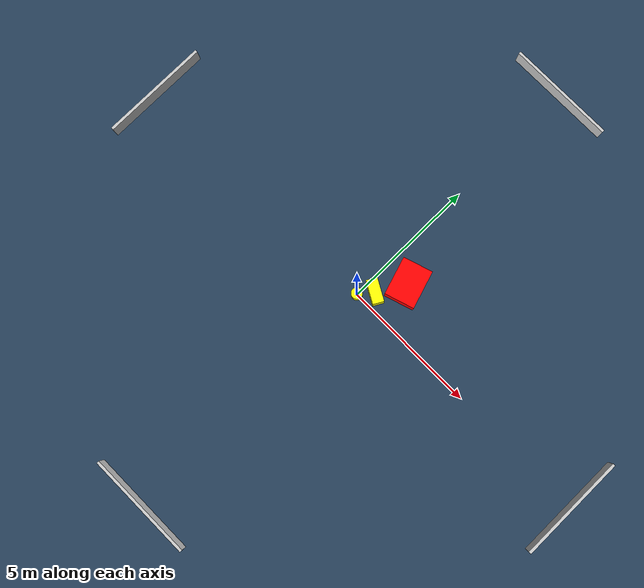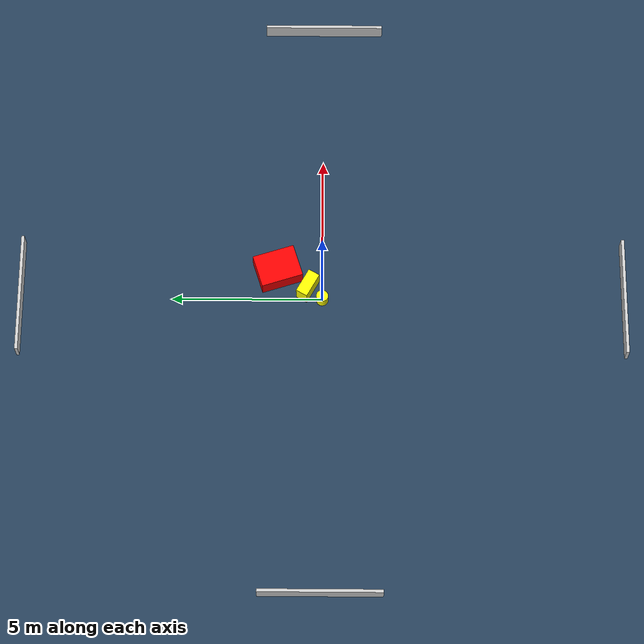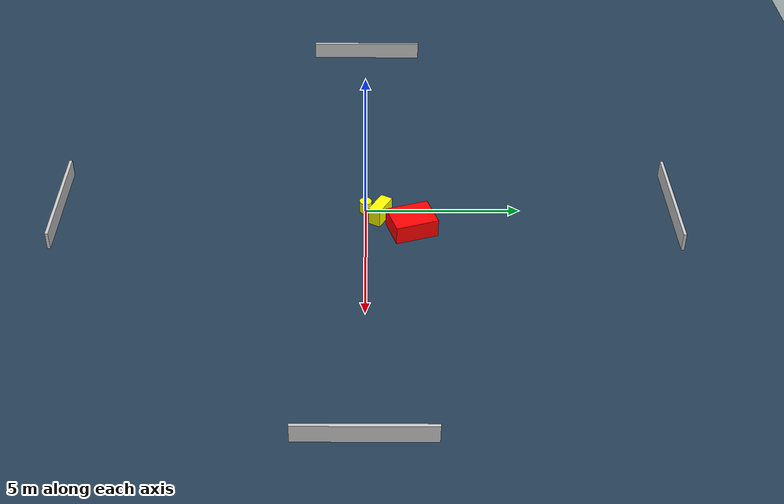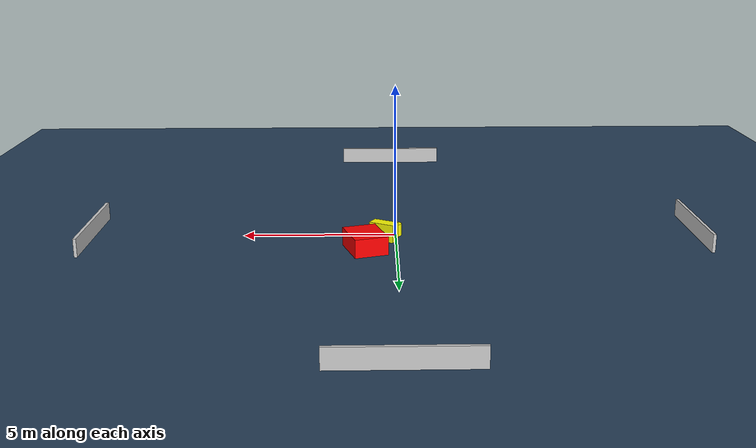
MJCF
<?xml version="1.0" ?>
<mujoco model="generated_environment">
  <option timestep="0.01" integrator="RK4" cone="elliptic"/>
  <default>
    <geom density="1"/>
  </default>
  <asset>
    <texture builtin="gradient" height="3072" name="skybox" rgb1="0.3 0.5 0.7" rgb2="0 0 0" type="skybox" width="512"/>
    <texture builtin="checker" height="300" name="groundplane" rgb1="0.2 0.3 0.4" rgb2="0.1 0.2 0.3" type="2d" width="300"/>
    <material name="groundplane" reflectance="0.2" texrepeat="5 5" texture="groundplane"/>
  </asset>
  <worldbody>
    <light dir="0 0 -1" directional="true" pos="0 0 1.5"/>
    <geom condim="3" friction="0.5 0.005 0.001" material="groundplane" name="floor" pos="0 0 0" size="0 0 0.05" type="plane"/>
    <body name="walls">
      <geom name="wall_1" condim="4" pos="-10.0 0.0 0.3" rgba="0.800000011920929 0.800000011920929 0.800000011920929 1.0" size="0.05 2.0 0.3" type="box"/>
      <geom name="wall_2" condim="4" pos="10.0 0.0 0.3" rgba="0.800000011920929 0.800000011920929 0.800000011920929 1.0" size="0.05 2.0 0.3" type="box"/>
      <geom name="wall_3" condim="4" pos="0.0 -10.0 0.3" rgba="0.800000011920929 0.800000011920929 0.800000011920929 1.0" size="2.0 0.05 0.3" type="box"/>
      <geom name="wall_4" condim="4" pos="0.0 10.0 0.3" rgba="0.800000011920929 0.800000011920929 0.800000011920929 1.0" size="2.0 0.05 0.3" type="box"/>
    </body>
    <body name="robot">
      <joint name="joint_x" type="slide" pos="0 0 0" axis="1 0 0"/>
      <joint name="joint_y" type="slide" pos="0 0 0" axis="0 1 0"/>
      <geom name="robot" type="cylinder" pos="0.0 0.0 0.2" size="0.2 0.2 0.0" mass="5.0" friction="1.0 0.005 0.0001" condim="4" rgba="1.0 1.0 0.0 1.0"/>
    </body>
    <body name="obstacle_1_movable">
      <geom name="obstacle_1_movable" condim="4" pos="0.3902712430950238 0.4808355786752299 0.3" euler="0 0 150.9421883617613" friction="0.0 0.005 0.001" rgba="1.0 1.0 0.0 1.0" size="0.4270864547701926 0.20101688273322327 0.3" type="box" mass="0.1"/>
      <joint type="free"/>
    </body>
    <body name="obstacle_2_static">
      <geom name="obstacle_2_static" condim="4" pos="0.9931394340387164 1.4819039449623423 0.3" euler="0 0 17.749852334428326" friction="0.0 0.005 0.001" rgba="1.0 0.0 0.0 1.0" size="0.5483997391878308 0.7029551041868143 0.3" type="box"/>
    </body>
  </worldbody>
  <actuator>
    <motor name="actuator_x" joint="joint_x" gear="1" ctrlrange="-1 1"/>
    <motor name="actuator_y" joint="joint_y" gear="1" ctrlrange="-1 1"/>
  </actuator>
</mujoco>
